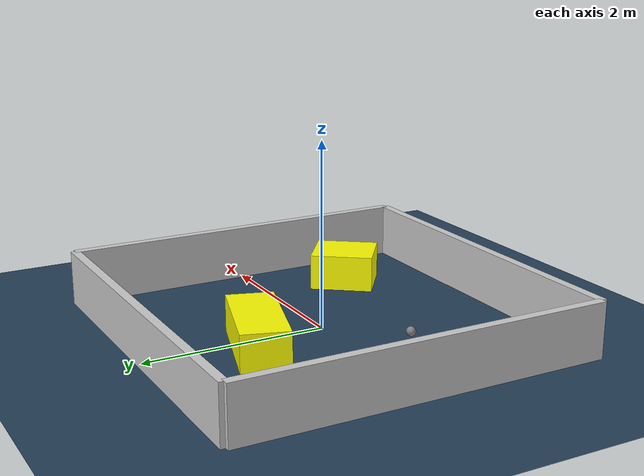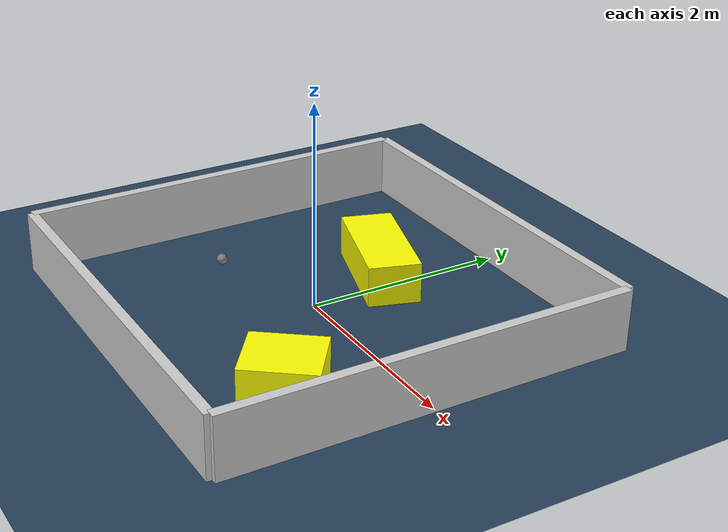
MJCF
<?xml version="1.0" ?>
<mujoco model="generated_environment">
  <option timestep="0.01" integrator="RK4" cone="elliptic"/>
  <default>
    <geom density="1"/>
  </default>
  <asset>
    <texture builtin="gradient" height="3072" rgb1="0.3 0.5 0.7" rgb2="0 0 0" type="skybox" width="512"/>
    <texture builtin="checker" height="300" mark="edge" markrgb="0.8 0.8 0.8" name="groundplane" rgb1="0.2 0.3 0.4" rgb2="0.1 0.2 0.3" type="2d" width="300"/>
    <material name="groundplane" reflectance="0.2" texrepeat="5 5" texture="groundplane" texuniform="true"/>
    <material name="robot" rgba="0.0 1.0 0.0 1"/>
  </asset>
  <worldbody>
    <light dir="0 0 -1" directional="true" pos="0 0 1.5"/>
    <geom condim="4" friction="1.0 0.005 0.001" material="groundplane" name="floor" size="0 0 0.05" type="plane"/>
    <body name="walls">
      <geom name="wall_1" condim="4" pos="-2.0 0.0 0.3" rgba="0.800000011920929 0.800000011920929 0.800000011920929 1.0" size="0.05 2.0 0.3" type="box"/>
      <geom name="wall_2" condim="4" pos="2.0 0.0 0.3" rgba="0.800000011920929 0.800000011920929 0.800000011920929 1.0" size="0.05 2.0 0.3" type="box"/>
      <geom name="wall_3" condim="4" pos="0.0 -2.0 0.3" rgba="0.800000011920929 0.800000011920929 0.800000011920929 1.0" size="2.0 0.05 0.3" type="box"/>
      <geom name="wall_4" condim="4" pos="0.0 2.0 0.3" rgba="0.800000011920929 0.800000011920929 0.800000011920929 1.0" size="2.0 0.05 0.3" type="box"/>
    </body>
    <body name="robot">
      <joint name="joint_x" type="slide" pos="0 0 0" axis="1 0 0"/>
      <joint name="joint_y" type="slide" pos="0 0 0" axis="0 1 0"/>
      <geom name="robot" type="sphere" pos="-0.9451788898617275 -0.48934932301262624 0.2" size="0.05" mass="5." friction="1.0 0.005 0.0001" condim="4"/>
      <site name="sensor_ball"/>
    </body>
    <body name="obstacle_1_movable">
      <geom name="obstacle_1_movable" condim="4" pos="-0.2108084843791287 0.8459373424843721 0.2" euler="0 0 72.47896361502221" friction="1.0 0.005 0.001" rgba="1 1 0 1" size="0.2546952667185656 0.5768599278179041 0.2" type="box" mass="0.1"/>
      <joint type="free"/>
    </body>
    <body name="obstacle_2_movable">
      <geom name="obstacle_2_movable" condim="4" pos="1.207367817496125 -0.9613026426624786 0.2" euler="0 0 142.99303671796744" friction="1.0 0.005 0.001" rgba="1 1 0 1" size="0.3144664218580582 0.35128307170511847 0.2" type="box" mass="0.1"/>
      <joint type="free"/>
    </body>
  </worldbody>
  <actuator>
    <motor name="actuator_x" joint="joint_x" gear="1" ctrlrange="-1 1"/>
    <motor name="actuator_y" joint="joint_y" gear="1" ctrlrange="-1 1"/>
  </actuator>
</mujoco>
